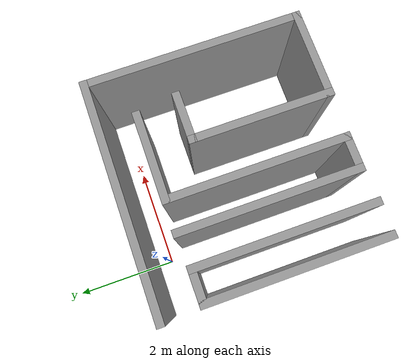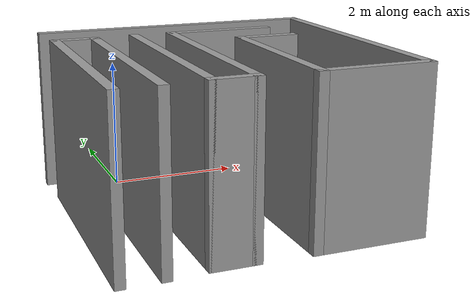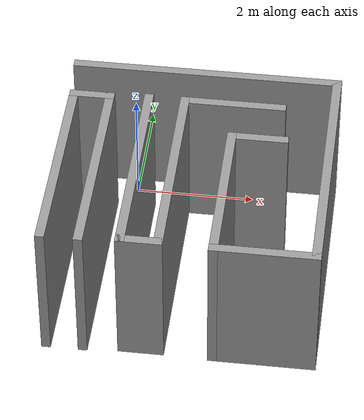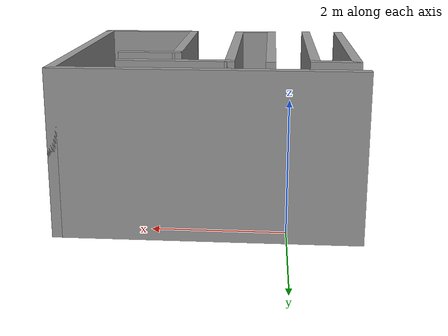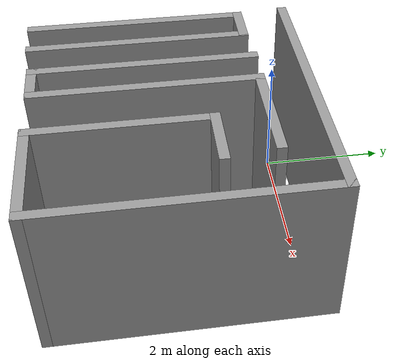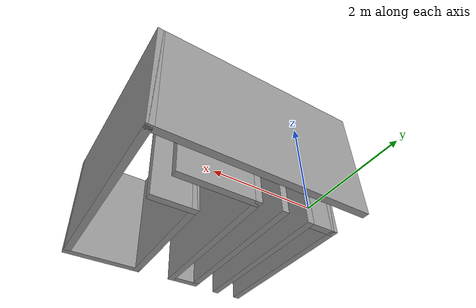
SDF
<?xml version='1.0'?>
<sdf version='1.7'>
  <model name='maze'>
    <pose>1.15938 -1.71349 0 0 -0 0</pose>
    <link name='Wall_17'>
      <collision name='Wall_17_Collision'>
        <geometry>
          <box>
            <size>3.5 0.15 2.5</size>
          </box>
        </geometry>
        <pose>0 0 1.25 0 -0 0</pose>
      </collision>
      <visual name='Wall_17_Visual'>
        <pose>0 0 1.25 0 -0 0</pose>
        <geometry>
          <box>
            <size>3.5 0.15 2.5</size>
          </box>
        </geometry>
        <material>
          <script>
            <uri>file://media/materials/scripts/gazebo.material</uri>
            <name>Gazebo/Grey</name>
          </script>
          <ambient>1 1 1 1</ambient>
        </material>
        <meta>
          <layer>0</layer>
        </meta>
      </visual>
      <pose>-2.129 -0.3835 0 0 -0 1.5708</pose>
    </link>
    <link name='Wall_18'>
      <collision name='Wall_18_Collision'>
        <geometry>
          <box>
            <size>0.75 0.15 2.5</size>
          </box>
        </geometry>
        <pose>0 0 1.25 0 -0 0</pose>
      </collision>
      <visual name='Wall_18_Visual'>
        <pose>0 0 1.25 0 -0 0</pose>
        <geometry>
          <box>
            <size>0.75 0.15 2.5</size>
          </box>
        </geometry>
        <material>
          <script>
            <uri>file://media/materials/scripts/gazebo.material</uri>
            <name>Gazebo/Grey</name>
          </script>
          <ambient>1 1 1 1</ambient>
        </material>
        <meta>
          <layer>0</layer>
        </meta>
      </visual>
      <pose>-1.829 1.2915 0 0 -0 0</pose>
    </link>
    <link name='Wall_19'>
      <collision name='Wall_19_Collision'>
        <geometry>
          <box>
            <size>3.5 0.15 2.5</size>
          </box>
        </geometry>
        <pose>0 0 1.25 0 -0 0</pose>
      </collision>
      <visual name='Wall_19_Visual'>
        <pose>0 0 1.25 0 -0 0</pose>
        <geometry>
          <box>
            <size>3.5 0.15 2.5</size>
          </box>
        </geometry>
        <material>
          <script>
            <uri>file://media/materials/scripts/gazebo.material</uri>
            <name>Gazebo/Grey</name>
          </script>
          <ambient>1 1 1 1</ambient>
        </material>
        <meta>
          <layer>0</layer>
        </meta>
      </visual>
      <pose>-1.529 -0.3835 0 0 -0 -1.5708</pose>
    </link>
    <link name='Wall_22'>
      <collision name='Wall_22_Collision'>
        <geometry>
          <box>
            <size>3.5 0.15 2.5</size>
          </box>
        </geometry>
        <pose>0 0 1.25 0 -0 0</pose>
      </collision>
      <visual name='Wall_22_Visual'>
        <pose>0 0 1.25 0 -0 0</pose>
        <geometry>
          <box>
            <size>3.5 0.15 2.5</size>
          </box>
        </geometry>
        <material>
          <script>
            <uri>file://media/materials/scripts/gazebo.material</uri>
            <name>Gazebo/Grey</name>
          </script>
          <ambient>1 1 1 1</ambient>
        </material>
        <meta>
          <layer>0</layer>
        </meta>
      </visual>
      <pose>-0.887 -0.3375 0 0 -0 1.5708</pose>
    </link>
    <link name='Wall_24'>
      <collision name='Wall_24_Collision'>
        <geometry>
          <box>
            <size>0.75 0.15 2.5</size>
          </box>
        </geometry>
        <pose>0 0 1.25 0 -0 0</pose>
      </collision>
      <visual name='Wall_24_Visual'>
        <pose>0 0 1.25 0 -0 0</pose>
        <geometry>
          <box>
            <size>0.75 0.15 2.5</size>
          </box>
        </geometry>
        <material>
          <script>
            <uri>file://media/materials/scripts/gazebo.material</uri>
            <name>Gazebo/Grey</name>
          </script>
          <ambient>1 1 1 1</ambient>
        </material>
        <meta>
          <layer>0</layer>
        </meta>
      </visual>
      <pose>-0.587 -2.0125 0 0 -0 0</pose>
    </link>
    <link name='Wall_25'>
      <collision name='Wall_25_Collision'>
        <geometry>
          <box>
            <size>3.5 0.15 2.5</size>
          </box>
        </geometry>
        <pose>0 0 1.25 0 -0 0</pose>
      </collision>
      <visual name='Wall_25_Visual'>
        <pose>0 0 1.25 0 -0 0</pose>
        <geometry>
          <box>
            <size>3.5 0.15 2.5</size>
          </box>
        </geometry>
        <material>
          <script>
            <uri>file://media/materials/scripts/gazebo.material</uri>
            <name>Gazebo/Grey</name>
          </script>
          <ambient>1 1 1 1</ambient>
        </material>
        <meta>
          <layer>0</layer>
        </meta>
      </visual>
      <pose>-0.287 -0.3375 0 0 -0 1.5708</pose>
    </link>
    <link name='Wall_26'>
      <collision name='Wall_26_Collision'>
        <geometry>
          <box>
            <size>1.75 0.15 2.5</size>
          </box>
        </geometry>
        <pose>0 0 1.25 0 -0 0</pose>
      </collision>
      <visual name='Wall_26_Visual'>
        <pose>0 0 1.25 0 -0 0</pose>
        <geometry>
          <box>
            <size>1.75 0.15 2.5</size>
          </box>
        </geometry>
        <material>
          <script>
            <uri>file://media/materials/scripts/gazebo.material</uri>
            <name>Gazebo/Grey</name>
          </script>
          <ambient>1 1 1 1</ambient>
        </material>
        <meta>
          <layer>0</layer>
        </meta>
      </visual>
      <pose>0.513 1.3375 0 0 -0 0</pose>
    </link>
    <link name='Wall_28'>
      <collision name='Wall_28_Collision'>
        <geometry>
          <box>
            <size>4.5 0.15 2.5</size>
          </box>
        </geometry>
        <pose>0 0 1.25 0 -0 0</pose>
      </collision>
      <visual name='Wall_28_Visual'>
        <pose>0 0 1.25 0 -0 0</pose>
        <geometry>
          <box>
            <size>4.5 0.15 2.5</size>
          </box>
        </geometry>
        <material>
          <script>
            <uri>file://media/materials/scripts/gazebo.material</uri>
            <name>Gazebo/Grey</name>
          </script>
          <ambient>1 1 1 1</ambient>
        </material>
        <meta>
          <layer>0</layer>
        </meta>
      </visual>
      <pose>-0 2.0585 0 0 -0 0</pose>
    </link>
    <link name='Wall_29'>
      <collision name='Wall_29_Collision'>
        <geometry>
          <box>
            <size>4.25 0.15 2.5</size>
          </box>
        </geometry>
        <pose>0 0 1.25 0 -0 0</pose>
      </collision>
      <visual name='Wall_29_Visual'>
        <pose>0 0 1.25 0 -0 0</pose>
        <geometry>
          <box>
            <size>4.25 0.15 2.5</size>
          </box>
        </geometry>
        <material>
          <script>
            <uri>file://media/materials/scripts/gazebo.material</uri>
            <name>Gazebo/Grey</name>
          </script>
          <ambient>1 1 1 1</ambient>
        </material>
        <meta>
          <layer>0</layer>
        </meta>
      </visual>
      <pose>2.175 0.0085 0 0 -0 -1.5708</pose>
    </link>
    <link name='Wall_30'>
      <collision name='Wall_30_Collision'>
        <geometry>
          <box>
            <size>1.75 0.15 2.5</size>
          </box>
        </geometry>
        <pose>0 0 1.25 0 -0 0</pose>
      </collision>
      <visual name='Wall_30_Visual'>
        <pose>0 0 1.25 0 -0 0</pose>
        <geometry>
          <box>
            <size>1.75 0.15 2.5</size>
          </box>
        </geometry>
        <material>
          <script>
            <uri>file://media/materials/scripts/gazebo.material</uri>
            <name>Gazebo/Grey</name>
          </script>
          <ambient>1 1 1 1</ambient>
        </material>
        <meta>
          <layer>0</layer>
        </meta>
      </visual>
      <pose>1.375 -2.0415 0 0 -0 3.14159</pose>
    </link>
    <link name='Wall_31'>
      <collision name='Wall_31_Collision'>
        <geometry>
          <box>
            <size>2.75 0.15 2.5</size>
          </box>
        </geometry>
        <pose>0 0 1.25 0 -0 0</pose>
      </collision>
      <visual name='Wall_31_Visual'>
        <pose>0 0 1.25 0 -0 0</pose>
        <geometry>
          <box>
            <size>2.75 0.15 2.5</size>
          </box>
        </geometry>
        <material>
          <script>
            <uri>file://media/materials/scripts/gazebo.material</uri>
            <name>Gazebo/Grey</name>
          </script>
          <ambient>1 1 1 1</ambient>
        </material>
        <meta>
          <layer>0</layer>
        </meta>
      </visual>
      <pose>0.575 -0.7415 0 0 -0 1.5708</pose>
    </link>
    <link name='Wall_32'>
      <collision name='Wall_32_Collision'>
        <geometry>
          <box>
            <size>1 0.15 2.5</size>
          </box>
        </geometry>
        <pose>0 0 1.25 0 -0 0</pose>
      </collision>
      <visual name='Wall_32_Visual'>
        <pose>0 0 1.25 0 -0 0</pose>
        <geometry>
          <box>
            <size>1 0.15 2.5</size>
          </box>
        </geometry>
        <material>
          <script>
            <uri>file://media/materials/scripts/gazebo.material</uri>
            <name>Gazebo/Grey</name>
          </script>
          <ambient>1 1 1 1</ambient>
        </material>
        <meta>
          <layer>0</layer>
        </meta>
      </visual>
      <pose>1 0.5585 0 0 -0 0</pose>
    </link>
    <static>1</static>
  </model>
</sdf>
